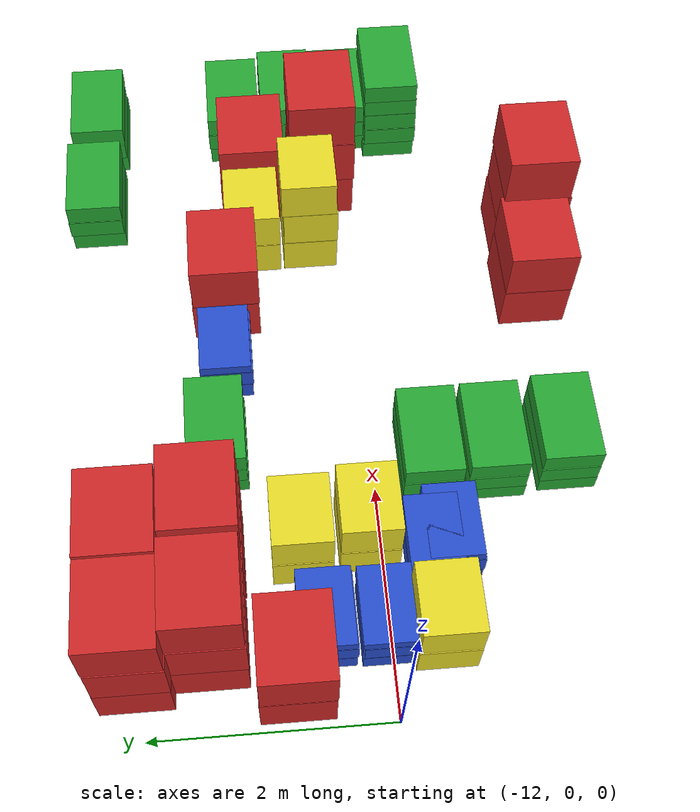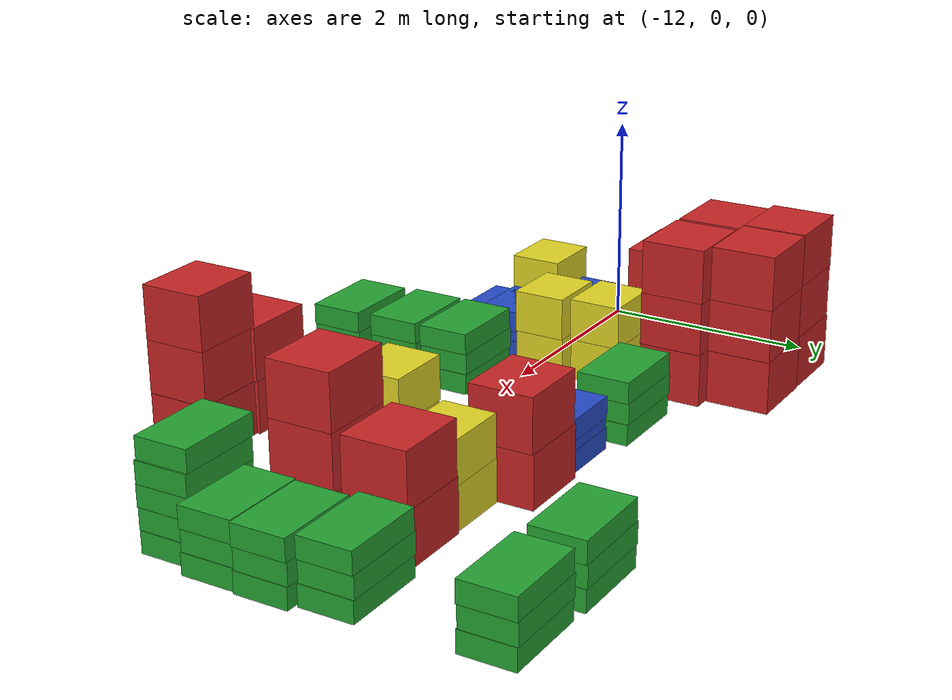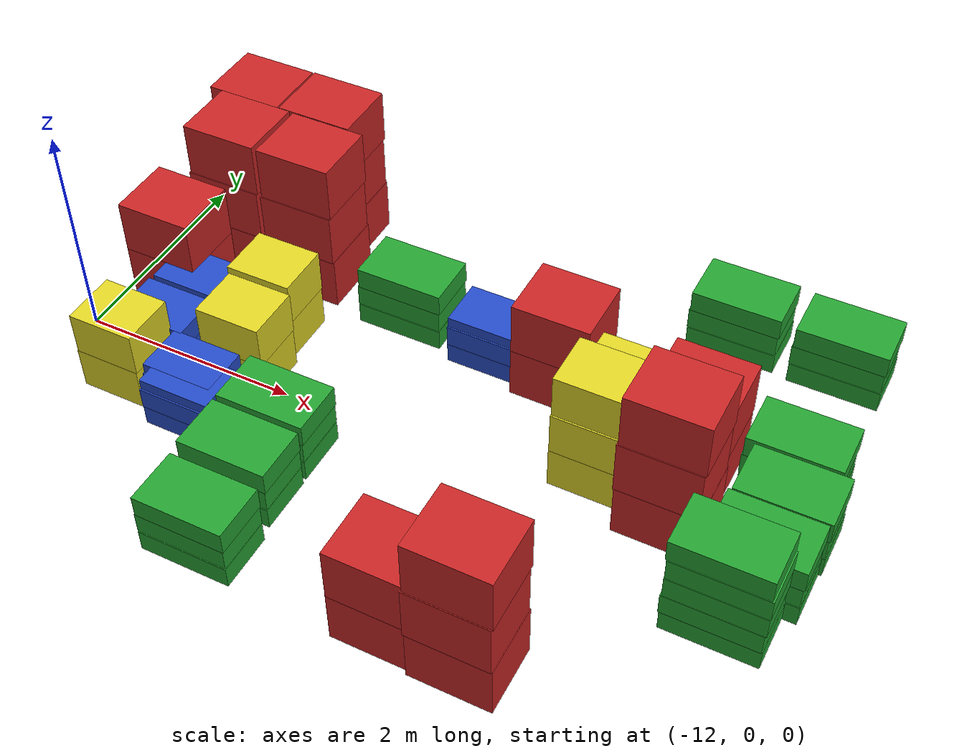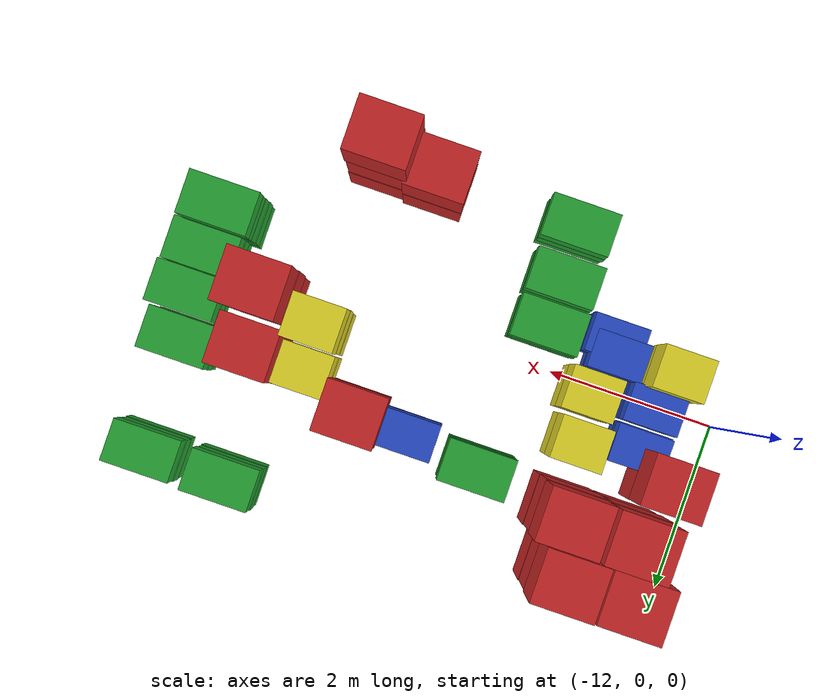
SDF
<sdf version="1.4">
 <model name="factory_baggage_group_B">
  <model name="baggage_C_x2_27">
   <model name="baggage_C_0">
    <static>1</static>
    <link name="link">
     <collision name="collision"><geometry><box><size>0.6 0.5 0.4</size></box></geometry></collision>
     <visual name="visual">
      <geometry><box><size>0.6 0.5 0.4</size></box></geometry>
      <material>
       <script><uri>file://media/materials/scripts/gazebo.material</uri><name>Gazebo/Yellow</name></script>
      </material>
     </visual>
    </link>
    <pose>0 0 0.2 0 -0 0</pose>
   </model>
   <model name="baggage_C_1">
    <static>1</static>
    <link name="link">
     <collision name="collision"><geometry><box><size>0.6 0.5 0.4</size></box></geometry></collision>
     <visual name="visual">
      <geometry><box><size>0.6 0.5 0.4</size></box></geometry>
      <material>
       <script><uri>file://media/materials/scripts/gazebo.material</uri><name>Gazebo/Yellow</name></script>
      </material>
     </visual>
    </link>
    <pose>0.0093 -0.002 0.6 0 -0 0</pose>
   </model>
   <pose>-11.299 -0.417062 0 0 -0 0</pose>
  </model>
  <model name="baggage_B_x3_21">
   <model name="baggage_B_0">
    <static>1</static>
    <link name="link">
     <collision name="collision"><geometry><box><size>0.65 0.45 0.2</size></box></geometry></collision>
     <visual name="visual">
      <geometry><box><size>0.65 0.45 0.2</size></box></geometry>
      <material>
       <script><uri>file://media/materials/scripts/gazebo.material</uri><name>Gazebo/Blue</name></script>
      </material>
     </visual>
    </link>
    <pose>0 0 0.1 0 -0 0</pose>
   </model>
   <model name="baggage_B_1">
    <static>1</static>
    <link name="link">
     <collision name="collision"><geometry><box><size>0.65 0.45 0.2</size></box></geometry></collision>
     <visual name="visual">
      <geometry><box><size>0.65 0.45 0.2</size></box></geometry>
      <material>
       <script><uri>file://media/materials/scripts/gazebo.material</uri><name>Gazebo/Blue</name></script>
      </material>
     </visual>
    </link>
    <pose>0.0028 -0.0086 0.3 0 -0 0</pose>
   </model>
   <model name="baggage_B_2">
    <static>1</static>
    <link name="link">
     <collision name="collision"><geometry><box><size>0.65 0.45 0.2</size></box></geometry></collision>
     <visual name="visual">
      <geometry><box><size>0.65 0.45 0.2</size></box></geometry>
      <material>
       <script><uri>file://media/materials/scripts/gazebo.material</uri><name>Gazebo/Blue</name></script>
      </material>
     </visual>
    </link>
    <pose>0.0092 0.006 0.4 0 -0 0</pose>
   </model>
   <pose>-11.2074 0.031881 0 0 -0 0</pose>
  </model>
  <model name="baggage_C_x2_28">
   <model name="baggage_C_0">
    <static>1</static>
    <link name="link">
     <collision name="collision"><geometry><box><size>0.6 0.5 0.4</size></box></geometry></collision>
     <visual name="visual">
      <geometry><box><size>0.6 0.5 0.4</size></box></geometry>
      <material>
       <script><uri>file://media/materials/scripts/gazebo.material</uri><name>Gazebo/Yellow</name></script>
      </material>
     </visual>
    </link>
    <pose>0 0 0.2 0 -0 0</pose>
   </model>
   <model name="baggage_C_1">
    <static>1</static>
    <link name="link">
     <collision name="collision"><geometry><box><size>0.6 0.5 0.4</size></box></geometry></collision>
     <visual name="visual">
      <geometry><box><size>0.6 0.5 0.4</size></box></geometry>
      <material>
       <script><uri>file://media/materials/scripts/gazebo.material</uri><name>Gazebo/Yellow</name></script>
      </material>
     </visual>
    </link>
    <pose>0.0093 -0.002 0.6 0 -0 0</pose>
   </model>
   <pose>-10.425 0.117379 0 0 -0 0</pose>
  </model>
  <model name="baggage_B_x3_22">
   <model name="baggage_B_0">
    <static>1</static>
    <link name="link">
     <collision name="collision"><geometry><box><size>0.65 0.45 0.2</size></box></geometry></collision>
     <visual name="visual">
      <geometry><box><size>0.65 0.45 0.2</size></box></geometry>
      <material>
       <script><uri>file://media/materials/scripts/gazebo.material</uri><name>Gazebo/Blue</name></script>
      </material>
     </visual>
    </link>
    <pose>0 0 0.1 0 -0 0</pose>
   </model>
   <model name="baggage_B_1">
    <static>1</static>
    <link name="link">
     <collision name="collision"><geometry><box><size>0.65 0.45 0.2</size></box></geometry></collision>
     <visual name="visual">
      <geometry><box><size>0.65 0.45 0.2</size></box></geometry>
      <material>
       <script><uri>file://media/materials/scripts/gazebo.material</uri><name>Gazebo/Blue</name></script>
      </material>
     </visual>
    </link>
    <pose>0.0028 -0.0086 0.3 0 -0 0</pose>
   </model>
   <model name="baggage_B_2">
    <static>1</static>
    <link name="link">
     <collision name="collision"><geometry><box><size>0.65 0.45 0.2</size></box></geometry></collision>
     <visual name="visual">
      <geometry><box><size>0.65 0.45 0.2</size></box></geometry>
      <material>
       <script><uri>file://media/materials/scripts/gazebo.material</uri><name>Gazebo/Blue</name></script>
      </material>
     </visual>
    </link>
    <pose>0.0092 0.006 0.4 0 -0 0</pose>
   </model>
   <pose>-11.1946 0.525631 0 0 -0 0</pose>
  </model>
  <model name="baggage_C_x2_29">
   <model name="baggage_C_0">
    <static>1</static>
    <link name="link">
     <collision name="collision"><geometry><box><size>0.6 0.5 0.4</size></box></geometry></collision>
     <visual name="visual">
      <geometry><box><size>0.6 0.5 0.4</size></box></geometry>
      <material>
       <script><uri>file://media/materials/scripts/gazebo.material</uri><name>Gazebo/Yellow</name></script>
      </material>
     </visual>
    </link>
    <pose>0 0 0.2 0 -0 0</pose>
   </model>
   <model name="baggage_C_1">
    <static>1</static>
    <link name="link">
     <collision name="collision"><geometry><box><size>0.6 0.5 0.4</size></box></geometry></collision>
     <visual name="visual">
      <geometry><box><size>0.6 0.5 0.4</size></box></geometry>
      <material>
       <script><uri>file://media/materials/scripts/gazebo.material</uri><name>Gazebo/Yellow</name></script>
      </material>
     </visual>
    </link>
    <pose>0.0093 -0.002 0.6 0 -0 0</pose>
   </model>
   <pose>-10.4859 0.676264 0 0 -0 0</pose>
  </model>
  <model name="baggage_B_x3_23">
   <model name="baggage_B_0">
    <static>1</static>
    <link name="link">
     <collision name="collision"><geometry><box><size>0.65 0.45 0.2</size></box></geometry></collision>
     <visual name="visual">
      <geometry><box><size>0.65 0.45 0.2</size></box></geometry>
      <material>
       <script><uri>file://media/materials/scripts/gazebo.material</uri><name>Gazebo/Blue</name></script>
      </material>
     </visual>
    </link>
    <pose>0 0 0.1 0 -0 0</pose>
   </model>
   <model name="baggage_B_1">
    <static>1</static>
    <link name="link">
     <collision name="collision"><geometry><box><size>0.65 0.45 0.2</size></box></geometry></collision>
     <visual name="visual">
      <geometry><box><size>0.65 0.45 0.2</size></box></geometry>
      <material>
       <script><uri>file://media/materials/scripts/gazebo.material</uri><name>Gazebo/Blue</name></script>
      </material>
     </visual>
    </link>
    <pose>0.0028 -0.0086 0.3 0 -0 0</pose>
   </model>
   <model name="baggage_B_2">
    <static>1</static>
    <link name="link">
     <collision name="collision"><geometry><box><size>0.65 0.45 0.2</size></box></geometry></collision>
     <visual name="visual">
      <geometry><box><size>0.65 0.45 0.2</size></box></geometry>
      <material>
       <script><uri>file://media/materials/scripts/gazebo.material</uri><name>Gazebo/Blue</name></script>
      </material>
     </visual>
    </link>
    <pose>0.0092 0.006 0.4 0 -0 0</pose>
   </model>
   <pose>-10.6261 -0.407751 0 0 -0 0</pose>
  </model>
  <model name="baggage_B_x3_24">
   <model name="baggage_B_0">
    <static>1</static>
    <link name="link">
     <collision name="collision"><geometry><box><size>0.65 0.45 0.2</size></box></geometry></collision>
     <visual name="visual">
      <geometry><box><size>0.65 0.45 0.2</size></box></geometry>
      <material>
       <script><uri>file://media/materials/scripts/gazebo.material</uri><name>Gazebo/Blue</name></script>
      </material>
     </visual>
    </link>
    <pose>0 0 0.1 0 -0 0</pose>
   </model>
   <model name="baggage_B_1">
    <static>1</static>
    <link name="link">
     <collision name="collision"><geometry><box><size>0.65 0.45 0.2</size></box></geometry></collision>
     <visual name="visual">
      <geometry><box><size>0.65 0.45 0.2</size></box></geometry>
      <material>
       <script><uri>file://media/materials/scripts/gazebo.material</uri><name>Gazebo/Blue</name></script>
      </material>
     </visual>
    </link>
    <pose>0.0028 -0.0086 0.3 0 -0 0</pose>
   </model>
   <model name="baggage_B_2">
    <static>1</static>
    <link name="link">
     <collision name="collision"><geometry><box><size>0.65 0.45 0.2</size></box></geometry></collision>
     <visual name="visual">
      <geometry><box><size>0.65 0.45 0.2</size></box></geometry>
      <material>
       <script><uri>file://media/materials/scripts/gazebo.material</uri><name>Gazebo/Blue</name></script>
      </material>
     </visual>
    </link>
    <pose>0.0092 0.006 0.4 0 -0 0</pose>
   </model>
   <pose>-10.541 -0.572061 0 0 -0 0</pose>
  </model>
  <model name="baggage_D_x3_19">
   <model name="baggage_D_0">
    <static>1</static>
    <link name="link">
     <collision name="collision"><geometry><box><size>0.8 0.5 0.2</size></box></geometry></collision>
     <visual name="visual">
      <geometry><box><size>0.8 0.5 0.2</size></box></geometry>
      <material>
       <script><uri>file://media/materials/scripts/gazebo.material</uri><name>Gazebo/Green</name></script>
      </material>
     </visual>
    </link>
    <pose>0 0 0.1 0 -0 0</pose>
   </model>
   <model name="baggage_D_1">
    <static>1</static>
    <link name="link">
     <collision name="collision"><geometry><box><size>0.8 0.5 0.2</size></box></geometry></collision>
     <visual name="visual">
      <geometry><box><size>0.8 0.5 0.2</size></box></geometry>
      <material>
       <script><uri>file://media/materials/scripts/gazebo.material</uri><name>Gazebo/Green</name></script>
      </material>
     </visual>
    </link>
    <pose>-0.0056 0.0083 0.3 0 -0 0</pose>
   </model>
   <model name="baggage_D_2">
    <static>1</static>
    <link name="link">
     <collision name="collision"><geometry><box><size>0.8 0.5 0.2</size></box></geometry></collision>
     <visual name="visual">
      <geometry><box><size>0.8 0.5 0.2</size></box></geometry>
      <material>
       <script><uri>file://media/materials/scripts/gazebo.material</uri><name>Gazebo/Green</name></script>
      </material>
     </visual>
    </link>
    <pose>0.0053 0.0057 0.5 0 -0 0</pose>
   </model>
   <pose>-9.712 -1.64517 0 0 -0 0</pose>
  </model>
  <model name="baggage_D_x3_20">
   <model name="baggage_D_0">
    <static>1</static>
    <link name="link">
     <collision name="collision"><geometry><box><size>0.8 0.5 0.2</size></box></geometry></collision>
     <visual name="visual">
      <geometry><box><size>0.8 0.5 0.2</size></box></geometry>
      <material>
       <script><uri>file://media/materials/scripts/gazebo.material</uri><name>Gazebo/Green</name></script>
      </material>
     </visual>
    </link>
    <pose>0 0 0.1 0 -0 0</pose>
   </model>
   <model name="baggage_D_1">
    <static>1</static>
    <link name="link">
     <collision name="collision"><geometry><box><size>0.8 0.5 0.2</size></box></geometry></collision>
     <visual name="visual">
      <geometry><box><size>0.8 0.5 0.2</size></box></geometry>
      <material>
       <script><uri>file://media/materials/scripts/gazebo.material</uri><name>Gazebo/Green</name></script>
      </material>
     </visual>
    </link>
    <pose>-0.0056 0.0083 0.3 0 -0 0</pose>
   </model>
   <model name="baggage_D_2">
    <static>1</static>
    <link name="link">
     <collision name="collision"><geometry><box><size>0.8 0.5 0.2</size></box></geometry></collision>
     <visual name="visual">
      <geometry><box><size>0.8 0.5 0.2</size></box></geometry>
      <material>
       <script><uri>file://media/materials/scripts/gazebo.material</uri><name>Gazebo/Green</name></script>
      </material>
     </visual>
    </link>
    <pose>0.0053 0.0057 0.5 0 -0 0</pose>
   </model>
   <pose>-9.74537 -1.02418 0 0 -0 0</pose>
  </model>
  <model name="baggage_D_x3_21">
   <model name="baggage_D_0">
    <static>1</static>
    <link name="link">
     <collision name="collision"><geometry><box><size>0.8 0.5 0.2</size></box></geometry></collision>
     <visual name="visual">
      <geometry><box><size>0.8 0.5 0.2</size></box></geometry>
      <material>
       <script><uri>file://media/materials/scripts/gazebo.material</uri><name>Gazebo/Green</name></script>
      </material>
     </visual>
    </link>
    <pose>0 0 0.1 0 -0 0</pose>
   </model>
   <model name="baggage_D_1">
    <static>1</static>
    <link name="link">
     <collision name="collision"><geometry><box><size>0.8 0.5 0.2</size></box></geometry></collision>
     <visual name="visual">
      <geometry><box><size>0.8 0.5 0.2</size></box></geometry>
      <material>
       <script><uri>file://media/materials/scripts/gazebo.material</uri><name>Gazebo/Green</name></script>
      </material>
     </visual>
    </link>
    <pose>-0.0056 0.0083 0.3 0 -0 0</pose>
   </model>
   <model name="baggage_D_2">
    <static>1</static>
    <link name="link">
     <collision name="collision"><geometry><box><size>0.8 0.5 0.2</size></box></geometry></collision>
     <visual name="visual">
      <geometry><box><size>0.8 0.5 0.2</size></box></geometry>
      <material>
       <script><uri>file://media/materials/scripts/gazebo.material</uri><name>Gazebo/Green</name></script>
      </material>
     </visual>
    </link>
    <pose>0.0053 0.0057 0.5 0 -0 0</pose>
   </model>
   <pose>-9.7501 -0.475677 0 0 -0 0</pose>
  </model>
  <model name="baggage_A_x2_17">
   <model name="baggage_A_0">
    <static>1</static>
    <link name="link">
     <collision name="collision"><geometry><box><size>0.7 0.6 0.5</size></box></geometry></collision>
     <visual name="visual">
      <geometry><box><size>0.7 0.6 0.5</size></box></geometry>
      <material>
       <script><uri>file://media/materials/scripts/gazebo.material</uri><name>Gazebo/Red</name></script>
      </material>
     </visual>
    </link>
    <pose>0 0 0.25 0 -0 0</pose>
   </model>
   <model name="baggage_A_1">
    <static>1</static>
    <link name="link">
     <collision name="collision"><geometry><box><size>0.7 0.6 0.5</size></box></geometry></collision>
     <visual name="visual">
      <geometry><box><size>0.7 0.6 0.5</size></box></geometry>
      <material>
       <script><uri>file://media/materials/scripts/gazebo.material</uri><name>Gazebo/Red</name></script>
      </material>
     </visual>
    </link>
    <pose>0.0063 -0.0062 0.75 0 -0 0</pose>
   </model>
   <pose>-8.04519 -1.63079 0 0 -0 0</pose>
  </model>
  <model name="baggage_A_x3_18">
   <model name="baggage_A_0">
    <static>1</static>
    <link name="link">
     <collision name="collision"><geometry><box><size>0.7 0.6 0.5</size></box></geometry></collision>
     <visual name="visual">
      <geometry><box><size>0.7 0.6 0.5</size></box></geometry>
      <material>
       <script><uri>file://media/materials/scripts/gazebo.material</uri><name>Gazebo/Red</name></script>
      </material>
     </visual>
    </link>
    <pose>0 0 0.25 0 -0 0</pose>
   </model>
   <model name="baggage_A_1">
    <static>1</static>
    <link name="link">
     <collision name="collision"><geometry><box><size>0.7 0.6 0.5</size></box></geometry></collision>
     <visual name="visual">
      <geometry><box><size>0.7 0.6 0.5</size></box></geometry>
      <material>
       <script><uri>file://media/materials/scripts/gazebo.material</uri><name>Gazebo/Red</name></script>
      </material>
     </visual>
    </link>
    <pose>-0.006 -0.0077 0.75 0 -0 0</pose>
   </model>
   <model name="baggage_A_2">
    <static>1</static>
    <link name="link">
     <collision name="collision"><geometry><box><size>0.7 0.6 0.5</size></box></geometry></collision>
     <visual name="visual">
      <geometry><box><size>0.7 0.6 0.5</size></box></geometry>
      <material>
       <script><uri>file://media/materials/scripts/gazebo.material</uri><name>Gazebo/Red</name></script>
      </material>
     </visual>
    </link>
    <pose>0.0045 0.0005 1.25 0 -0 0</pose>
   </model>
   <pose>-7.3856 -1.66591 0 0 -0 0</pose>
  </model>
  <model name="baggage_C_x3_30">
   <model name="baggage_C_0">
    <static>1</static>
    <link name="link">
     <collision name="collision"><geometry><box><size>0.6 0.5 0.4</size></box></geometry></collision>
     <visual name="visual">
      <geometry><box><size>0.6 0.5 0.4</size></box></geometry>
      <material>
       <script><uri>file://media/materials/scripts/gazebo.material</uri><name>Gazebo/Yellow</name></script>
      </material>
     </visual>
    </link>
    <pose>0 0 0.2 0 -0 0</pose>
   </model>
   <model name="baggage_C_1">
    <static>1</static>
    <link name="link">
     <collision name="collision"><geometry><box><size>0.6 0.5 0.4</size></box></geometry></collision>
     <visual name="visual">
      <geometry><box><size>0.6 0.5 0.4</size></box></geometry>
      <material>
       <script><uri>file://media/materials/scripts/gazebo.material</uri><name>Gazebo/Yellow</name></script>
      </material>
     </visual>
    </link>
    <pose>0.0062 -0.0069 0.6 0 -0 0</pose>
   </model>
   <model name="baggage_C_2">
    <static>1</static>
    <link name="link">
     <collision name="collision"><geometry><box><size>0.6 0.5 0.4</size></box></geometry></collision>
     <visual name="visual">
      <geometry><box><size>0.6 0.5 0.4</size></box></geometry>
      <material>
       <script><uri>file://media/materials/scripts/gazebo.material</uri><name>Gazebo/Yellow</name></script>
      </material>
     </visual>
    </link>
    <pose>0.0089 0.0083 1 0 -0 0</pose>
   </model>
   <pose>-7.30642 0.372682 0 0 -0 0</pose>
  </model>
  <model name="baggage_C_x2_31">
   <model name="baggage_C_0">
    <static>1</static>
    <link name="link">
     <collision name="collision"><geometry><box><size>0.6 0.5 0.4</size></box></geometry></collision>
     <visual name="visual">
      <geometry><box><size>0.6 0.5 0.4</size></box></geometry>
      <material>
       <script><uri>file://media/materials/scripts/gazebo.material</uri><name>Gazebo/Yellow</name></script>
      </material>
     </visual>
    </link>
    <pose>0 0 0.2 0 -0 0</pose>
   </model>
   <model name="baggage_C_1">
    <static>1</static>
    <link name="link">
     <collision name="collision"><geometry><box><size>0.6 0.5 0.4</size></box></geometry></collision>
     <visual name="visual">
      <geometry><box><size>0.6 0.5 0.4</size></box></geometry>
      <material>
       <script><uri>file://media/materials/scripts/gazebo.material</uri><name>Gazebo/Yellow</name></script>
      </material>
     </visual>
    </link>
    <pose>0.0093 -0.002 0.6 0 -0 0</pose>
   </model>
   <pose>-7.3144 0.904439 0 0 -0 0</pose>
  </model>
  <model name="baggage_A_x3_21">
   <model name="baggage_A_0">
    <static>1</static>
    <link name="link">
     <collision name="collision"><geometry><box><size>0.7 0.6 0.5</size></box></geometry></collision>
     <visual name="visual">
      <geometry><box><size>0.7 0.6 0.5</size></box></geometry>
      <material>
       <script><uri>file://media/materials/scripts/gazebo.material</uri><name>Gazebo/Red</name></script>
      </material>
     </visual>
    </link>
    <pose>0 0 0.25 0 -0 0</pose>
   </model>
   <model name="baggage_A_1">
    <static>1</static>
    <link name="link">
     <collision name="collision"><geometry><box><size>0.7 0.6 0.5</size></box></geometry></collision>
     <visual name="visual">
      <geometry><box><size>0.7 0.6 0.5</size></box></geometry>
      <material>
       <script><uri>file://media/materials/scripts/gazebo.material</uri><name>Gazebo/Red</name></script>
      </material>
     </visual>
    </link>
    <pose>-0.006 -0.0077 0.75 0 -0 0</pose>
   </model>
   <model name="baggage_A_2">
    <static>1</static>
    <link name="link">
     <collision name="collision"><geometry><box><size>0.7 0.6 0.5</size></box></geometry></collision>
     <visual name="visual">
      <geometry><box><size>0.7 0.6 0.5</size></box></geometry>
      <material>
       <script><uri>file://media/materials/scripts/gazebo.material</uri><name>Gazebo/Red</name></script>
      </material>
     </visual>
    </link>
    <pose>0.0045 0.0005 1.25 0 -0 0</pose>
   </model>
   <pose>-6.61164 0.215172 0 0 -0 0</pose>
  </model>
  <model name="baggage_A_x2_19">
   <model name="baggage_A_0">
    <static>1</static>
    <link name="link">
     <collision name="collision"><geometry><box><size>0.7 0.6 0.5</size></box></geometry></collision>
     <visual name="visual">
      <geometry><box><size>0.7 0.6 0.5</size></box></geometry>
      <material>
       <script><uri>file://media/materials/scripts/gazebo.material</uri><name>Gazebo/Red</name></script>
      </material>
     </visual>
    </link>
    <pose>0 0 0.25 0 -0 0</pose>
   </model>
   <model name="baggage_A_1">
    <static>1</static>
    <link name="link">
     <collision name="collision"><geometry><box><size>0.7 0.6 0.5</size></box></geometry></collision>
     <visual name="visual">
      <geometry><box><size>0.7 0.6 0.5</size></box></geometry>
      <material>
       <script><uri>file://media/materials/scripts/gazebo.material</uri><name>Gazebo/Red</name></script>
      </material>
     </visual>
    </link>
    <pose>0.0063 -0.0062 0.75 0 -0 0</pose>
   </model>
   <pose>-6.64511 0.874852 0 0 -0 0</pose>
  </model>
  <model name="baggage_D_x3_22">
   <model name="baggage_D_0">
    <static>1</static>
    <link name="link">
     <collision name="collision"><geometry><box><size>0.8 0.5 0.2</size></box></geometry></collision>
     <visual name="visual">
      <geometry><box><size>0.8 0.5 0.2</size></box></geometry>
      <material>
       <script><uri>file://media/materials/scripts/gazebo.material</uri><name>Gazebo/Green</name></script>
      </material>
     </visual>
    </link>
    <pose>0 0 0.1 0 -0 0</pose>
   </model>
   <model name="baggage_D_1">
    <static>1</static>
    <link name="link">
     <collision name="collision"><geometry><box><size>0.8 0.5 0.2</size></box></geometry></collision>
     <visual name="visual">
      <geometry><box><size>0.8 0.5 0.2</size></box></geometry>
      <material>
       <script><uri>file://media/materials/scripts/gazebo.material</uri><name>Gazebo/Green</name></script>
      </material>
     </visual>
    </link>
    <pose>-0.0056 0.0083 0.3 0 -0 0</pose>
   </model>
   <model name="baggage_D_2">
    <static>1</static>
    <link name="link">
     <collision name="collision"><geometry><box><size>0.8 0.5 0.2</size></box></geometry></collision>
     <visual name="visual">
      <geometry><box><size>0.8 0.5 0.2</size></box></geometry>
      <material>
       <script><uri>file://media/materials/scripts/gazebo.material</uri><name>Gazebo/Green</name></script>
      </material>
     </visual>
    </link>
    <pose>0.0053 0.0057 0.5 0 -0 0</pose>
   </model>
   <pose>-5.77223 -0.024658 0 0 -0 0</pose>
  </model>
  <model name="baggage_D_x3_23">
   <model name="baggage_D_0">
    <static>1</static>
    <link name="link">
     <collision name="collision"><geometry><box><size>0.8 0.5 0.2</size></box></geometry></collision>
     <visual name="visual">
      <geometry><box><size>0.8 0.5 0.2</size></box></geometry>
      <material>
       <script><uri>file://media/materials/scripts/gazebo.material</uri><name>Gazebo/Green</name></script>
      </material>
     </visual>
    </link>
    <pose>0 0 0.1 0 -0 0</pose>
   </model>
   <model name="baggage_D_1">
    <static>1</static>
    <link name="link">
     <collision name="collision"><geometry><box><size>0.8 0.5 0.2</size></box></geometry></collision>
     <visual name="visual">
      <geometry><box><size>0.8 0.5 0.2</size></box></geometry>
      <material>
       <script><uri>file://media/materials/scripts/gazebo.material</uri><name>Gazebo/Green</name></script>
      </material>
     </visual>
    </link>
    <pose>-0.0056 0.0083 0.3 0 -0 0</pose>
   </model>
   <model name="baggage_D_2">
    <static>1</static>
    <link name="link">
     <collision name="collision"><geometry><box><size>0.8 0.5 0.2</size></box></geometry></collision>
     <visual name="visual">
      <geometry><box><size>0.8 0.5 0.2</size></box></geometry>
      <material>
       <script><uri>file://media/materials/scripts/gazebo.material</uri><name>Gazebo/Green</name></script>
      </material>
     </visual>
    </link>
    <pose>0.0053 0.0057 0.5 0 -0 0</pose>
   </model>
   <pose>-5.74765 0.488081 0 0 -0 0</pose>
  </model>
  <model name="baggage_D_x3_24">
   <model name="baggage_D_0">
    <static>1</static>
    <link name="link">
     <collision name="collision"><geometry><box><size>0.8 0.5 0.2</size></box></geometry></collision>
     <visual name="visual">
      <geometry><box><size>0.8 0.5 0.2</size></box></geometry>
      <material>
       <script><uri>file://media/materials/scripts/gazebo.material</uri><name>Gazebo/Green</name></script>
      </material>
     </visual>
    </link>
    <pose>0 0 0.1 0 -0 0</pose>
   </model>
   <model name="baggage_D_1">
    <static>1</static>
    <link name="link">
     <collision name="collision"><geometry><box><size>0.8 0.5 0.2</size></box></geometry></collision>
     <visual name="visual">
      <geometry><box><size>0.8 0.5 0.2</size></box></geometry>
      <material>
       <script><uri>file://media/materials/scripts/gazebo.material</uri><name>Gazebo/Green</name></script>
      </material>
     </visual>
    </link>
    <pose>-0.0056 0.0083 0.3 0 -0 0</pose>
   </model>
   <model name="baggage_D_2">
    <static>1</static>
    <link name="link">
     <collision name="collision"><geometry><box><size>0.8 0.5 0.2</size></box></geometry></collision>
     <visual name="visual">
      <geometry><box><size>0.8 0.5 0.2</size></box></geometry>
      <material>
       <script><uri>file://media/materials/scripts/gazebo.material</uri><name>Gazebo/Green</name></script>
      </material>
     </visual>
    </link>
    <pose>0.0053 0.0057 0.5 0 -0 0</pose>
   </model>
   <pose>-5.833 1.01423 0 0 -0 0</pose>
  </model>
  <model name="baggage_D_x5_15">
   <model name="baggage_D_0">
    <static>1</static>
    <link name="link">
     <collision name="collision"><geometry><box><size>0.8 0.5 0.2</size></box></geometry></collision>
     <visual name="visual">
      <geometry><box><size>0.8 0.5 0.2</size></box></geometry>
      <material>
       <script><uri>file://media/materials/scripts/gazebo.material</uri><name>Gazebo/Green</name></script>
      </material>
     </visual>
    </link>
    <pose>0 0 0.1 0 -0 0</pose>
   </model>
   <model name="baggage_D_1">
    <static>1</static>
    <link name="link">
     <collision name="collision"><geometry><box><size>0.8 0.5 0.2</size></box></geometry></collision>
     <visual name="visual">
      <geometry><box><size>0.8 0.5 0.2</size></box></geometry>
      <material>
       <script><uri>file://media/materials/scripts/gazebo.material</uri><name>Gazebo/Green</name></script>
      </material>
     </visual>
    </link>
    <pose>-0.0065 -0.0092 0.3 0 -0 0</pose>
   </model>
   <model name="baggage_D_2">
    <static>1</static>
    <link name="link">
     <collision name="collision"><geometry><box><size>0.8 0.5 0.2</size></box></geometry></collision>
     <visual name="visual">
      <geometry><box><size>0.8 0.5 0.2</size></box></geometry>
      <material>
       <script><uri>file://media/materials/scripts/gazebo.material</uri><name>Gazebo/Green</name></script>
      </material>
     </visual>
    </link>
    <pose>0.005 -0.0052 0.5 0 -0 0</pose>
   </model>
   <model name="baggage_D_3">
    <static>1</static>
    <link name="link">
     <collision name="collision"><geometry><box><size>0.8 0.5 0.2</size></box></geometry></collision>
     <visual name="visual">
      <geometry><box><size>0.8 0.5 0.2</size></box></geometry>
      <material>
       <script><uri>file://media/materials/scripts/gazebo.material</uri><name>Gazebo/Green</name></script>
      </material>
     </visual>
    </link>
    <pose>0.0074 0.0002 0.7 0 -0 0</pose>
   </model>
   <model name="baggage_D_4">
    <static>1</static>
    <link name="link">
     <collision name="collision"><geometry><box><size>0.8 0.5 0.2</size></box></geometry></collision>
     <visual name="visual">
      <geometry><box><size>0.8 0.5 0.2</size></box></geometry>
      <material>
       <script><uri>file://media/materials/scripts/gazebo.material</uri><name>Gazebo/Green</name></script>
      </material>
     </visual>
    </link>
    <pose>-0.006 0.0081 0.9 0 -0 0</pose>
   </model>
   <pose>-5.88515 -0.512317 0 0 -0 0</pose>
  </model>
  <model name="baggage_A_x2_20">
   <model name="baggage_A_0">
    <static>1</static>
    <link name="link">
     <collision name="collision"><geometry><box><size>0.7 0.6 0.5</size></box></geometry></collision>
     <visual name="visual">
      <geometry><box><size>0.7 0.6 0.5</size></box></geometry>
      <material>
       <script><uri>file://media/materials/scripts/gazebo.material</uri><name>Gazebo/Red</name></script>
      </material>
     </visual>
    </link>
    <pose>0 0 0.25 0 -0 0</pose>
   </model>
   <model name="baggage_A_1">
    <static>1</static>
    <link name="link">
     <collision name="collision"><geometry><box><size>0.7 0.6 0.5</size></box></geometry></collision>
     <visual name="visual">
      <geometry><box><size>0.7 0.6 0.5</size></box></geometry>
      <material>
       <script><uri>file://media/materials/scripts/gazebo.material</uri><name>Gazebo/Red</name></script>
      </material>
     </visual>
    </link>
    <pose>0.0063 -0.0062 0.75 0 -0 0</pose>
   </model>
   <pose>-11.5819 0.79868 0 0 -0 0</pose>
  </model>
  <model name="baggage_A_x3_22">
   <model name="baggage_A_0">
    <static>1</static>
    <link name="link">
     <collision name="collision"><geometry><box><size>0.7 0.6 0.5</size></box></geometry></collision>
     <visual name="visual">
      <geometry><box><size>0.7 0.6 0.5</size></box></geometry>
      <material>
       <script><uri>file://media/materials/scripts/gazebo.material</uri><name>Gazebo/Red</name></script>
      </material>
     </visual>
    </link>
    <pose>0 0 0.25 0 -0 0</pose>
   </model>
   <model name="baggage_A_1">
    <static>1</static>
    <link name="link">
     <collision name="collision"><geometry><box><size>0.7 0.6 0.5</size></box></geometry></collision>
     <visual name="visual">
      <geometry><box><size>0.7 0.6 0.5</size></box></geometry>
      <material>
       <script><uri>file://media/materials/scripts/gazebo.material</uri><name>Gazebo/Red</name></script>
      </material>
     </visual>
    </link>
    <pose>-0.006 -0.0077 0.75 0 -0 0</pose>
   </model>
   <model name="baggage_A_2">
    <static>1</static>
    <link name="link">
     <collision name="collision"><geometry><box><size>0.7 0.6 0.5</size></box></geometry></collision>
     <visual name="visual">
      <geometry><box><size>0.7 0.6 0.5</size></box></geometry>
      <material>
       <script><uri>file://media/materials/scripts/gazebo.material</uri><name>Gazebo/Red</name></script>
      </material>
     </visual>
    </link>
    <pose>0.0045 0.0005 1.25 0 -0 0</pose>
   </model>
   <pose>-11.2834 1.4596 0 0 -0 0</pose>
  </model>
  <model name="baggage_A_x3_23">
   <model name="baggage_A_0">
    <static>1</static>
    <link name="link">
     <collision name="collision"><geometry><box><size>0.7 0.6 0.5</size></box></geometry></collision>
     <visual name="visual">
      <geometry><box><size>0.7 0.6 0.5</size></box></geometry>
      <material>
       <script><uri>file://media/materials/scripts/gazebo.material</uri><name>Gazebo/Red</name></script>
      </material>
     </visual>
    </link>
    <pose>0 0 0.25 0 -0 0</pose>
   </model>
   <model name="baggage_A_1">
    <static>1</static>
    <link name="link">
     <collision name="collision"><geometry><box><size>0.7 0.6 0.5</size></box></geometry></collision>
     <visual name="visual">
      <geometry><box><size>0.7 0.6 0.5</size></box></geometry>
      <material>
       <script><uri>file://media/materials/scripts/gazebo.material</uri><name>Gazebo/Red</name></script>
      </material>
     </visual>
    </link>
    <pose>-0.006 -0.0077 0.75 0 -0 0</pose>
   </model>
   <model name="baggage_A_2">
    <static>1</static>
    <link name="link">
     <collision name="collision"><geometry><box><size>0.7 0.6 0.5</size></box></geometry></collision>
     <visual name="visual">
      <geometry><box><size>0.7 0.6 0.5</size></box></geometry>
      <material>
       <script><uri>file://media/materials/scripts/gazebo.material</uri><name>Gazebo/Red</name></script>
      </material>
     </visual>
    </link>
    <pose>0.0045 0.0005 1.25 0 -0 0</pose>
   </model>
   <pose>-10.5375 1.45338 0 0 -0 0</pose>
  </model>
  <model name="baggage_A_x3_24">
   <model name="baggage_A_0">
    <static>1</static>
    <link name="link">
     <collision name="collision"><geometry><box><size>0.7 0.6 0.5</size></box></geometry></collision>
     <visual name="visual">
      <geometry><box><size>0.7 0.6 0.5</size></box></geometry>
      <material>
       <script><uri>file://media/materials/scripts/gazebo.material</uri><name>Gazebo/Red</name></script>
      </material>
     </visual>
    </link>
    <pose>0 0 0.25 0 -0 0</pose>
   </model>
   <model name="baggage_A_1">
    <static>1</static>
    <link name="link">
     <collision name="collision"><geometry><box><size>0.7 0.6 0.5</size></box></geometry></collision>
     <visual name="visual">
      <geometry><box><size>0.7 0.6 0.5</size></box></geometry>
      <material>
       <script><uri>file://media/materials/scripts/gazebo.material</uri><name>Gazebo/Red</name></script>
      </material>
     </visual>
    </link>
    <pose>-0.006 -0.0077 0.75 0 -0 0</pose>
   </model>
   <model name="baggage_A_2">
    <static>1</static>
    <link name="link">
     <collision name="collision"><geometry><box><size>0.7 0.6 0.5</size></box></geometry></collision>
     <visual name="visual">
      <geometry><box><size>0.7 0.6 0.5</size></box></geometry>
      <material>
       <script><uri>file://media/materials/scripts/gazebo.material</uri><name>Gazebo/Red</name></script>
      </material>
     </visual>
    </link>
    <pose>0.0045 0.0005 1.25 0 -0 0</pose>
   </model>
   <pose>-11.4101 2.05776 0 0 -0 0</pose>
  </model>
  <model name="baggage_A_x3_25">
   <model name="baggage_A_0">
    <static>1</static>
    <link name="link">
     <collision name="collision"><geometry><box><size>0.7 0.6 0.5</size></box></geometry></collision>
     <visual name="visual">
      <geometry><box><size>0.7 0.6 0.5</size></box></geometry>
      <material>
       <script><uri>file://media/materials/scripts/gazebo.material</uri><name>Gazebo/Red</name></script>
      </material>
     </visual>
    </link>
    <pose>0 0 0.25 0 -0 0</pose>
   </model>
   <model name="baggage_A_1">
    <static>1</static>
    <link name="link">
     <collision name="collision"><geometry><box><size>0.7 0.6 0.5</size></box></geometry></collision>
     <visual name="visual">
      <geometry><box><size>0.7 0.6 0.5</size></box></geometry>
      <material>
       <script><uri>file://media/materials/scripts/gazebo.material</uri><name>Gazebo/Red</name></script>
      </material>
     </visual>
    </link>
    <pose>-0.006 -0.0077 0.75 0 -0 0</pose>
   </model>
   <model name="baggage_A_2">
    <static>1</static>
    <link name="link">
     <collision name="collision"><geometry><box><size>0.7 0.6 0.5</size></box></geometry></collision>
     <visual name="visual">
      <geometry><box><size>0.7 0.6 0.5</size></box></geometry>
      <material>
       <script><uri>file://media/materials/scripts/gazebo.material</uri><name>Gazebo/Red</name></script>
      </material>
     </visual>
    </link>
    <pose>0.0045 0.0005 1.25 0 -0 0</pose>
   </model>
   <pose>-10.6922 2.06381 0 0 -0 0</pose>
  </model>
  <model name="baggage_D_x3_28">
   <model name="baggage_D_0">
    <static>1</static>
    <link name="link">
     <collision name="collision"><geometry><box><size>0.8 0.5 0.2</size></box></geometry></collision>
     <visual name="visual">
      <geometry><box><size>0.8 0.5 0.2</size></box></geometry>
      <material>
       <script><uri>file://media/materials/scripts/gazebo.material</uri><name>Gazebo/Green</name></script>
      </material>
     </visual>
    </link>
    <pose>0 0 0.1 0 -0 0</pose>
   </model>
   <model name="baggage_D_1">
    <static>1</static>
    <link name="link">
     <collision name="collision"><geometry><box><size>0.8 0.5 0.2</size></box></geometry></collision>
     <visual name="visual">
      <geometry><box><size>0.8 0.5 0.2</size></box></geometry>
      <material>
       <script><uri>file://media/materials/scripts/gazebo.material</uri><name>Gazebo/Green</name></script>
      </material>
     </visual>
    </link>
    <pose>-0.0056 0.0083 0.3 0 -0 0</pose>
   </model>
   <model name="baggage_D_2">
    <static>1</static>
    <link name="link">
     <collision name="collision"><geometry><box><size>0.8 0.5 0.2</size></box></geometry></collision>
     <visual name="visual">
      <geometry><box><size>0.8 0.5 0.2</size></box></geometry>
      <material>
       <script><uri>file://media/materials/scripts/gazebo.material</uri><name>Gazebo/Green</name></script>
      </material>
     </visual>
    </link>
    <pose>0.0053 0.0057 0.5 0 -0 0</pose>
   </model>
   <pose>-6.81021 2.3733 0 0 -0 0</pose>
  </model>
  <model name="baggage_D_x3_30">
   <model name="baggage_D_0">
    <static>1</static>
    <link name="link">
     <collision name="collision"><geometry><box><size>0.8 0.5 0.2</size></box></geometry></collision>
     <visual name="visual">
      <geometry><box><size>0.8 0.5 0.2</size></box></geometry>
      <material>
       <script><uri>file://media/materials/scripts/gazebo.material</uri><name>Gazebo/Green</name></script>
      </material>
     </visual>
    </link>
    <pose>0 0 0.1 0 -0 0</pose>
   </model>
   <model name="baggage_D_1">
    <static>1</static>
    <link name="link">
     <collision name="collision"><geometry><box><size>0.8 0.5 0.2</size></box></geometry></collision>
     <visual name="visual">
      <geometry><box><size>0.8 0.5 0.2</size></box></geometry>
      <material>
       <script><uri>file://media/materials/scripts/gazebo.material</uri><name>Gazebo/Green</name></script>
      </material>
     </visual>
    </link>
    <pose>-0.0056 0.0083 0.3 0 -0 0</pose>
   </model>
   <model name="baggage_D_2">
    <static>1</static>
    <link name="link">
     <collision name="collision"><geometry><box><size>0.8 0.5 0.2</size></box></geometry></collision>
     <visual name="visual">
      <geometry><box><size>0.8 0.5 0.2</size></box></geometry>
      <material>
       <script><uri>file://media/materials/scripts/gazebo.material</uri><name>Gazebo/Green</name></script>
      </material>
     </visual>
    </link>
    <pose>0.0053 0.0057 0.5 0 -0 0</pose>
   </model>
   <pose>-5.87401 2.3463 0 0 -0 0</pose>
  </model>
  <model name="baggage_A_x2_24">
   <model name="baggage_A_0">
    <static>1</static>
    <link name="link">
     <collision name="collision"><geometry><box><size>0.7 0.6 0.5</size></box></geometry></collision>
     <visual name="visual">
      <geometry><box><size>0.7 0.6 0.5</size></box></geometry>
      <material>
       <script><uri>file://media/materials/scripts/gazebo.material</uri><name>Gazebo/Red</name></script>
      </material>
     </visual>
    </link>
    <pose>0 0 0.25 0 -0 0</pose>
   </model>
   <model name="baggage_A_1">
    <static>1</static>
    <link name="link">
     <collision name="collision"><geometry><box><size>0.7 0.6 0.5</size></box></geometry></collision>
     <visual name="visual">
      <geometry><box><size>0.7 0.6 0.5</size></box></geometry>
      <material>
       <script><uri>file://media/materials/scripts/gazebo.material</uri><name>Gazebo/Red</name></script>
      </material>
     </visual>
    </link>
    <pose>0.0063 -0.0062 0.75 0 -0 0</pose>
   </model>
   <pose>-7.97244 1.18999 0 0 -0 0</pose>
  </model>
  <model name="baggage_B_x3_29">
   <model name="baggage_B_0">
    <static>1</static>
    <link name="link">
     <collision name="collision"><geometry><box><size>0.65 0.45 0.2</size></box></geometry></collision>
     <visual name="visual">
      <geometry><box><size>0.65 0.45 0.2</size></box></geometry>
      <material>
       <script><uri>file://media/materials/scripts/gazebo.material</uri><name>Gazebo/Blue</name></script>
      </material>
     </visual>
    </link>
    <pose>0 0 0.1 0 -0 0</pose>
   </model>
   <model name="baggage_B_1">
    <static>1</static>
    <link name="link">
     <collision name="collision"><geometry><box><size>0.65 0.45 0.2</size></box></geometry></collision>
     <visual name="visual">
      <geometry><box><size>0.65 0.45 0.2</size></box></geometry>
      <material>
       <script><uri>file://media/materials/scripts/gazebo.material</uri><name>Gazebo/Blue</name></script>
      </material>
     </visual>
    </link>
    <pose>0.0028 -0.0086 0.3 0 -0 0</pose>
   </model>
   <model name="baggage_B_2">
    <static>1</static>
    <link name="link">
     <collision name="collision"><geometry><box><size>0.65 0.45 0.2</size></box></geometry></collision>
     <visual name="visual">
      <geometry><box><size>0.65 0.45 0.2</size></box></geometry>
      <material>
       <script><uri>file://media/materials/scripts/gazebo.material</uri><name>Gazebo/Blue</name></script>
      </material>
     </visual>
    </link>
    <pose>0.0092 0.006 0.4 0 -0 0</pose>
   </model>
   <pose>-8.64915 1.21734 0 0 -0 0</pose>
  </model>
  <model name="baggage_D_x3_32">
   <model name="baggage_D_0">
    <static>1</static>
    <link name="link">
     <collision name="collision"><geometry><box><size>0.8 0.5 0.2</size></box></geometry></collision>
     <visual name="visual">
      <geometry><box><size>0.8 0.5 0.2</size></box></geometry>
      <material>
       <script><uri>file://media/materials/scripts/gazebo.material</uri><name>Gazebo/Green</name></script>
      </material>
     </visual>
    </link>
    <pose>0 0 0.1 0 -0 0</pose>
   </model>
   <model name="baggage_D_1">
    <static>1</static>
    <link name="link">
     <collision name="collision"><geometry><box><size>0.8 0.5 0.2</size></box></geometry></collision>
     <visual name="visual">
      <geometry><box><size>0.8 0.5 0.2</size></box></geometry>
      <material>
       <script><uri>file://media/materials/scripts/gazebo.material</uri><name>Gazebo/Green</name></script>
      </material>
     </visual>
    </link>
    <pose>-0.0056 0.0083 0.3 0 -0 0</pose>
   </model>
   <model name="baggage_D_2">
    <static>1</static>
    <link name="link">
     <collision name="collision"><geometry><box><size>0.8 0.5 0.2</size></box></geometry></collision>
     <visual name="visual">
      <geometry><box><size>0.8 0.5 0.2</size></box></geometry>
      <material>
       <script><uri>file://media/materials/scripts/gazebo.material</uri><name>Gazebo/Green</name></script>
      </material>
     </visual>
    </link>
    <pose>0.0053 0.0057 0.5 0 -0 0</pose>
   </model>
   <pose>-9.50385 1.32928 0 0 -0 0</pose>
  </model>
 </model>
</sdf>
